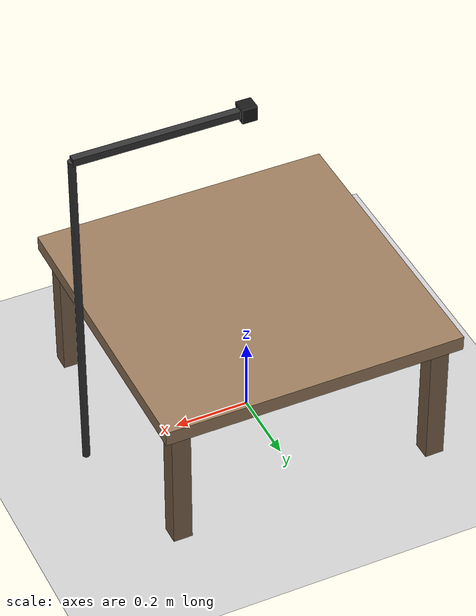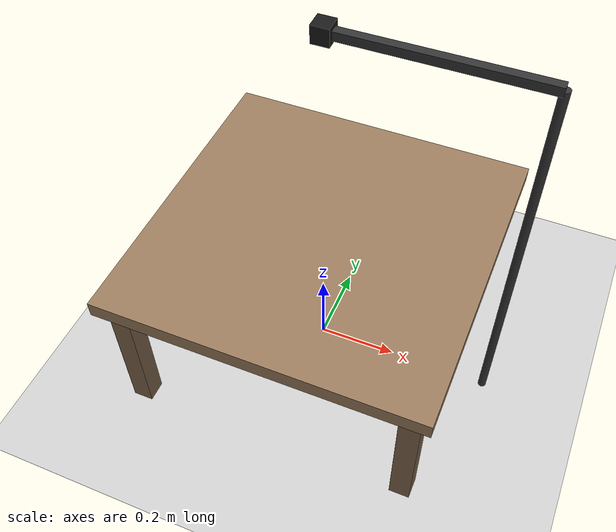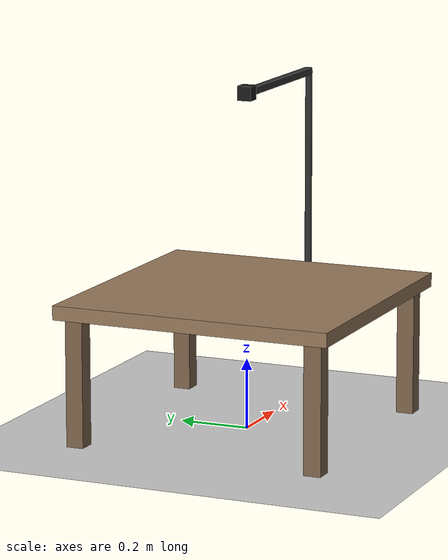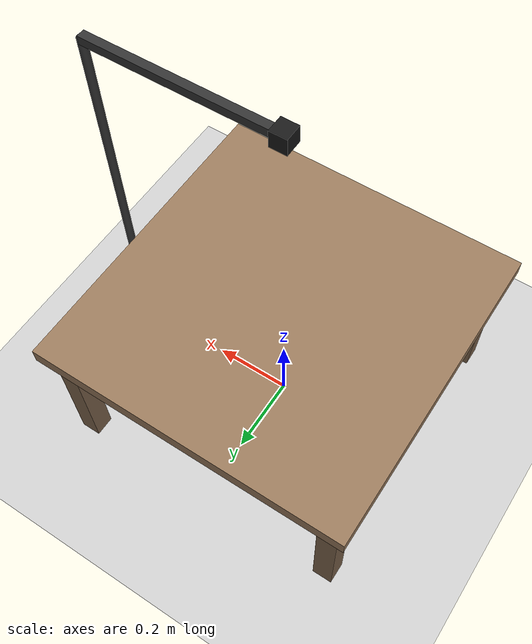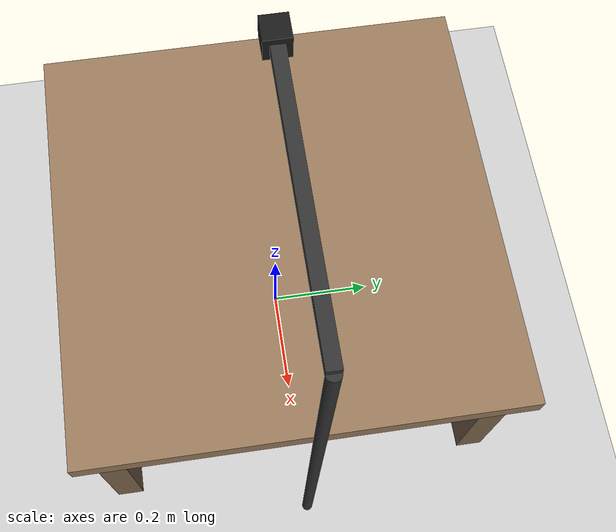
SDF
<?xml version="1.0"?>
<sdf version="1.10">
  <world name="vision_table">

    <physics name="1ms" type="ignored">
      <max_step_size>0.001</max_step_size>
      <real_time_factor>1.0</real_time_factor>
    </physics>

    <plugin filename="gz-sim-physics-system"
            name="gz::sim::systems::Physics"/>
    <plugin filename="gz-sim-user-commands-system"
            name="gz::sim::systems::UserCommands"/>
    <plugin filename="gz-sim-scene-broadcaster-system"
            name="gz::sim::systems::SceneBroadcaster"/>
    <plugin filename="gz-sim-sensors-system"
            name="gz::sim::systems::Sensors">
      <render_engine>ogre2</render_engine>
    </plugin>

    <!-- Eclairage pense pour la VISION : ambiant eleve + fond neutre => ombres
         douces, couleurs stables pour le seuillage HSV. -->
    <scene>
      <ambient>0.6 0.6 0.6 1</ambient>
      <background>0.85 0.85 0.85 1</background>
      <grid>false</grid>
      <shadows>true</shadows>
    </scene>

    <!-- Soleil directionnel DOUX (peu speculaire, vertical) pour limiter les
         reflets et les ombres dures sur les objets. -->
    <light type="directional" name="sun">
      <cast_shadows>true</cast_shadows>
      <pose>0 0 10 0 0 0</pose>
      <diffuse>0.7 0.7 0.7 1</diffuse>
      <specular>0.1 0.1 0.1 1</specular>
      <direction>-0.2 0.1 -1.0</direction>
    </light>
    <!-- Petite lumiere d'appoint (remplit les ombres cote oppose). -->
    <light type="directional" name="fill">
      <cast_shadows>false</cast_shadows>
      <pose>0 0 8 0 0 0</pose>
      <diffuse>0.35 0.35 0.35 1</diffuse>
      <specular>0.0 0.0 0.0 1</specular>
      <direction>0.4 -0.3 -1.0</direction>
    </light>

    <!-- ============================= Sol ================================== -->
    <model name="ground_plane">
      <static>true</static>
      <link name="link">
        <collision name="collision">
          <geometry><plane><normal>0 0 1</normal><size>20 20</size></plane></geometry>
        </collision>
        <visual name="visual">
          <geometry><plane><normal>0 0 1</normal><size>20 20</size></plane></geometry>
          <material>
            <ambient>0.8 0.8 0.8 1</ambient>
            <diffuse>0.8 0.8 0.8 1</diffuse>
          </material>
        </visual>
      </link>
    </model>

    <model name="vision_table">
      <static>true</static>
      <pose>0 0 0 0 0 0</pose>
      <link name="table_link">
        <collision name="top_col">
          <pose>0 0 0.38 0 0 0</pose>
          <geometry><box><size>0.8 0.8 0.04</size></box></geometry>
        </collision>
        <visual name="top_vis">
          <pose>0 0 0.38 0 0 0</pose>
          <geometry><box><size>0.8 0.8 0.04</size></box></geometry>
          <material>
            <ambient>0.50 0.40 0.30 1</ambient>
            <diffuse>0.60 0.48 0.36 1</diffuse>
            <specular>0.05 0.05 0.05 1</specular>
          </material>
        </visual>
        <!-- 4 pieds 0.05x0.05x0.36, centre z=0.18, aux coins (+/-0.35) -->
        <collision name="leg1_col"><pose>0.35 0.35 0.18 0 0 0</pose>
          <geometry><box><size>0.05 0.05 0.36</size></box></geometry></collision>
        <visual name="leg1_vis"><pose>0.35 0.35 0.18 0 0 0</pose>
          <geometry><box><size>0.05 0.05 0.36</size></box></geometry>
          <material><ambient>0.40 0.32 0.24 1</ambient><diffuse>0.50 0.40 0.30 1</diffuse></material></visual>
        <collision name="leg2_col"><pose>-0.35 0.35 0.18 0 0 0</pose>
          <geometry><box><size>0.05 0.05 0.36</size></box></geometry></collision>
        <visual name="leg2_vis"><pose>-0.35 0.35 0.18 0 0 0</pose>
          <geometry><box><size>0.05 0.05 0.36</size></box></geometry>
          <material><ambient>0.40 0.32 0.24 1</ambient><diffuse>0.50 0.40 0.30 1</diffuse></material></visual>
        <collision name="leg3_col"><pose>0.35 -0.35 0.18 0 0 0</pose>
          <geometry><box><size>0.05 0.05 0.36</size></box></geometry></collision>
        <visual name="leg3_vis"><pose>0.35 -0.35 0.18 0 0 0</pose>
          <geometry><box><size>0.05 0.05 0.36</size></box></geometry>
          <material><ambient>0.40 0.32 0.24 1</ambient><diffuse>0.50 0.40 0.30 1</diffuse></material></visual>
        <collision name="leg4_col"><pose>-0.35 -0.35 0.18 0 0 0</pose>
          <geometry><box><size>0.05 0.05 0.36</size></box></geometry></collision>
        <visual name="leg4_vis"><pose>-0.35 -0.35 0.18 0 0 0</pose>
          <geometry><box><size>0.05 0.05 0.36</size></box></geometry>
          <material><ambient>0.40 0.32 0.24 1</ambient><diffuse>0.50 0.40 0.30 1</diffuse></material></visual>
      </link>
    </model>

    <model name="camera_stand">
      <static>true</static>
      <pose>0 0 0 0 0 0</pose>
      <link name="camera_link">
        <!-- Mat (visuel uniquement, hors champ) : du sol jusqu'a la camera (z=0.95). -->
        <visual name="mast">
          <pose>0.45 0 0.475 0 0 0</pose>
          <geometry><cylinder><radius>0.01</radius><length>0.95</length></cylinder></geometry>
          <material><ambient>0.2 0.2 0.2 1</ambient><diffuse>0.2 0.2 0.2 1</diffuse></material>
        </visual>
        <!-- Bras horizontal reliant le mat a la camera au-dessus du centre. -->
        <visual name="arm">
          <pose>0.225 0 0.95 0 0 0</pose>
          <geometry><box><size>0.45 0.02 0.02</size></box></geometry>
          <material><ambient>0.2 0.2 0.2 1</ambient><diffuse>0.2 0.2 0.2 1</diffuse></material>
        </visual>
        <!-- Boitier camera -->
        <visual name="body">
          <pose>0 0 0.95 0 1.5708 0</pose>
          <geometry><box><size>0.04 0.04 0.04</size></box></geometry>
          <material><ambient>0.1 0.1 0.1 1</ambient><diffuse>0.1 0.1 0.1 1</diffuse></material>
        </visual>

        <!-- ===== Capteur camera : VUE DU DESSUS (defaut) ===== -->
        <sensor name="vision_camera" type="camera">
          <pose>0 0 0.95 0 1.5708 0</pose>   <!-- regarde -Z -->
          <topic>camera</topic>                <!-- gz publie /camera (image) + /camera_info -->
          <frame_id>camera_optical_frame</frame_id>  <!-- header.frame_id de camera_info -->
          <update_rate>30</update_rate>
          <always_on>true</always_on>
          <visualize>false</visualize>
          <camera>
            <horizontal_fov>1.2</horizontal_fov>
            <image>
              <width>1280</width>
              <height>720</height>
              <format>R8G8B8</format>
            </image>
            <clip>
              <near>0.05</near>
              <far>10.0</far>
            </clip>
          </camera>
        </sensor>

      </link>
    </model>

  </world>
</sdf>
